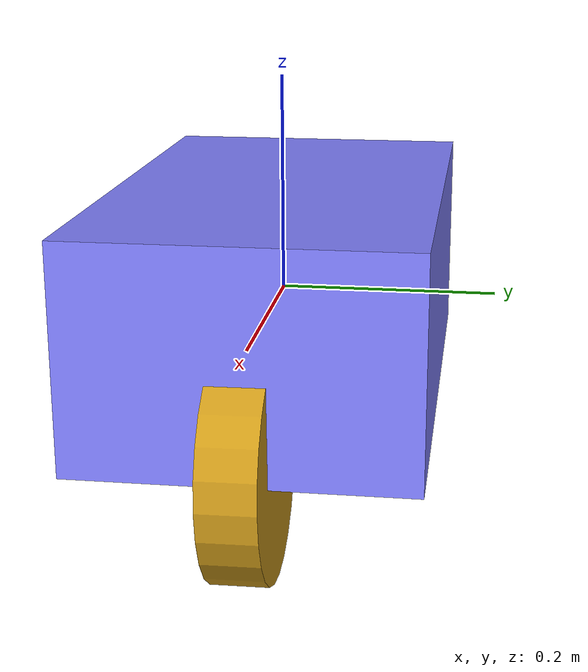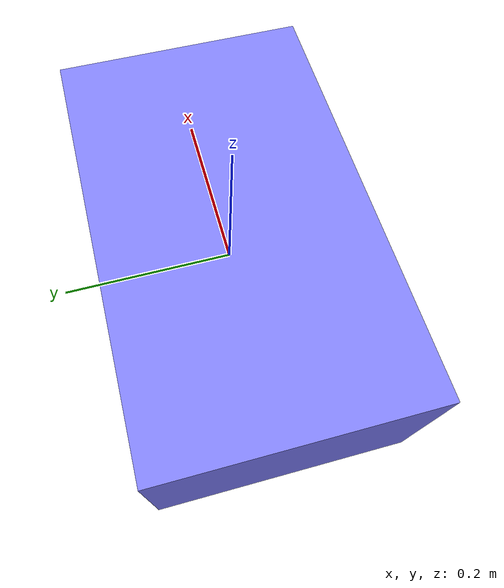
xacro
<?xml version="1.0"?>
<robot xmlns:xacro="http://www.ros.org/wiki/xacro" name="my_robot">

  <xacro:include filename="wheel_control.ros2_control.xacro" />

  <link name="base_link">
    <visual>
      <geometry>
        <box size="0.5 0.3 0.2"/>
      </geometry>
      <material name="blue">
        <color rgba="0.5 0.5 1.0 1.0"/>
      </material>
    </visual>
  </link>

  <link name="wheel_link">
    <visual>
      <geometry>
        <cylinder radius="0.1" length="0.05"/>
      </geometry>
      <origin xyz="0 0 0" rpy="1.58 0 0"/>
      <material name="black">
        <color rgba="0.8 0.6 0.1 1.0"/>
      </material>
    </visual>
  </link>

  <joint name="wheel_joint" type="continuous">
    <parent link="base_link"/>
    <child link="wheel_link"/>
    <origin xyz="0.2 0 -0.1" rpy="0 0 0"/>
    <axis xyz="0 1 0"/>
  </joint>

<xacro:wheel_ros2_control name="WheelSystem" />
</robot>
